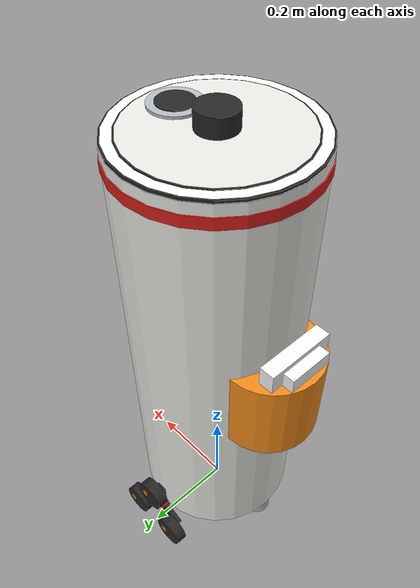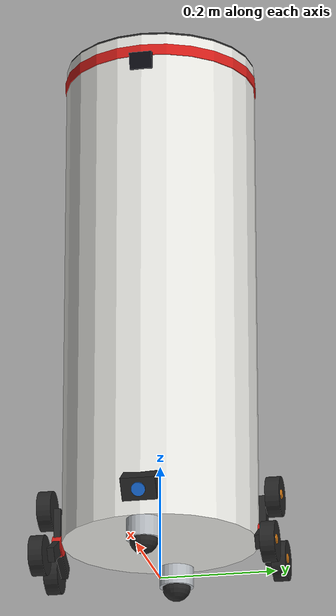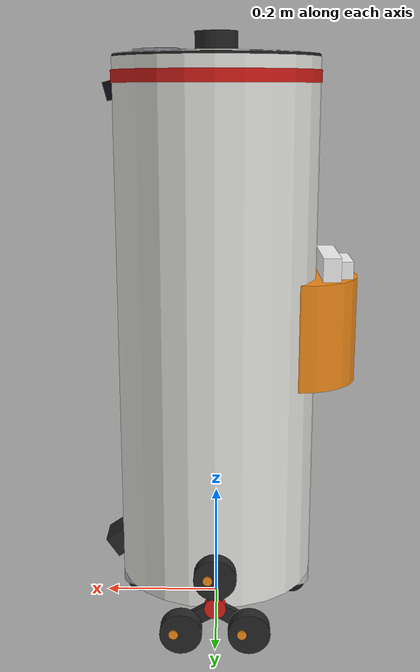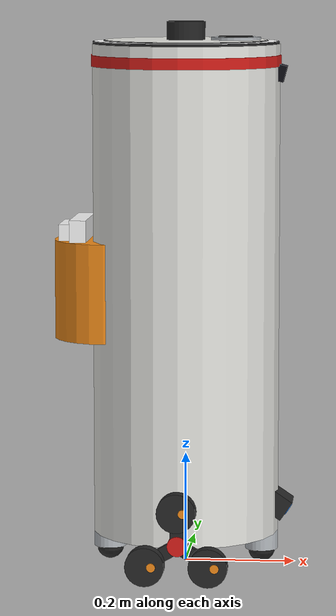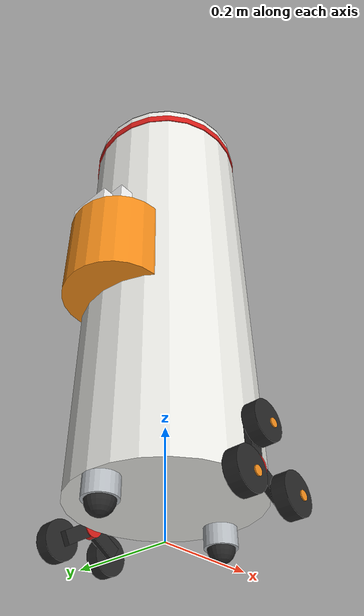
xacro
<?xml version="1.0"?>
<!-- Unit-1 home fire response robot: air-purifier-sized cylindrical body (0.95 m tall) on two tri-star wheel sets. -->
<robot name="home_robot" xmlns:xacro="http://www.ros.org/wiki/xacro">

  <!-- Body -->
  <xacro:property name="body_r" value="0.17"/>
  <xacro:property name="body_h" value="0.89"/>   <!-- top cover at 0.95 m -->
  <xacro:property name="body_z0" value="0.06"/>   <!-- ground clearance -->
  <xacro:property name="body_mass" value="3.0"/>    <!-- shell, sensors, towel, projector -->

  <!-- Heavy parts low in the body (inertial only, hidden inside) -->
  <xacro:property name="aerosol_mass" value="4.5"/> <!-- per unit, 217 x 99 mm, x2 -->
  <xacro:property name="battery_mass" value="2.5"/>

  <!-- Ball casters front/rear, bottom level with the tri-star wheel contacts -->
  <xacro:property name="caster_r" value="0.025"/>
  <xacro:property name="caster_x" value="0.14"/>

  <!-- Tri-star: frame fixed to body, 3 small wheels at 120 deg; bottom two touch the floor -->
  <xacro:property name="wheel_r" value="0.035"/>
  <xacro:property name="wheel_w" value="0.025"/>
  <xacro:property name="wheel_mass" value="0.15"/>
  <xacro:property name="arm" value="0.065"/>
  <xacro:property name="hub_z" value="${wheel_r + arm * 0.5}"/>
  <xacro:property name="hub_y" value="0.20"/>

  <xacro:property name="PI" value="3.14159265"/>

  <xacro:macro name="cyl_inertia" params="m r h">
    <inertia ixx="${m * (3 * r * r + h * h) / 12}" ixy="0" ixz="0"
             iyy="${m * (3 * r * r + h * h) / 12}" iyz="0" izz="${m * r * r / 2}"/>
  </xacro:macro>

  <material name="body_white"><color rgba="0.92 0.92 0.90 1"/></material>
  <material name="dark"><color rgba="0.15 0.15 0.15 1"/></material>
  <material name="towel_white"><color rgba="0.98 0.98 0.98 1"/></material>
  <material name="red"><color rgba="0.85 0.12 0.10 1"/></material>
  <material name="orange"><color rgba="0.95 0.55 0.10 1"/></material>
  <material name="blue"><color rgba="0.10 0.45 0.90 1"/></material>
  <material name="outlet_gray"><color rgba="0.72 0.74 0.76 1"/></material>
  <material name="glass"><color rgba="0.05 0.05 0.08 1"/></material>

  <link name="base_footprint"/>

  <link name="base_link">
    <visual>
      <geometry><cylinder radius="${body_r}" length="${body_h}"/></geometry>
      <material name="body_white"/>
    </visual>
    <!-- red band -->
    <visual>
      <origin xyz="0 0 ${body_h / 2 - 0.03}"/>
      <geometry><cylinder radius="${body_r + 0.002}" length="0.02"/></geometry>
      <material name="red"/>
    </visual>
    <collision>
      <geometry><cylinder radius="${body_r}" length="${body_h}"/></geometry>
    </collision>
    <inertial>
      <mass value="${body_mass}"/>
      <xacro:cyl_inertia m="${body_mass}" r="${body_r}" h="${body_h}"/>
    </inertial>
  </link>

  <joint name="base_joint" type="fixed">
    <parent link="base_footprint"/>
    <child link="base_link"/>
    <origin xyz="0 0 ${body_z0 + body_h / 2}"/>
  </joint>

  <!-- ===== Tri-star wheel sets ===== -->
  <xacro:macro name="tristar" params="side y">
    <link name="${side}_tristar_frame">
      <!-- three arms -->
      <xacro:macro name="arm_visual" params="ang">
        <visual>
          <origin xyz="${arm / 2 * cos(ang)} 0 ${arm / 2 * sin(ang)}" rpy="0 ${-ang} 0"/>
          <geometry><box size="${arm} 0.012 0.025"/></geometry>
          <material name="dark"/>
        </visual>
      </xacro:macro>
      <xacro:arm_visual ang="${PI / 2}"/>
      <xacro:arm_visual ang="${-PI / 6}"/>
      <xacro:arm_visual ang="${-5 * PI / 6}"/>
      <visual>
        <origin rpy="${PI / 2} 0 0"/>
        <geometry><cylinder radius="0.018" length="0.016"/></geometry>
        <material name="red"/>
      </visual>
      <inertial>
        <mass value="0.2"/>
        <inertia ixx="1e-4" ixy="0" ixz="0" iyy="1e-4" iyz="0" izz="1e-4"/>
      </inertial>
    </link>
    <joint name="${side}_tristar_joint" type="fixed">
      <parent link="base_link"/>
      <child link="${side}_tristar_frame"/>
      <origin xyz="0 ${y * (hub_y - 0.02)} ${hub_z - body_z0 - body_h / 2}"/>
    </joint>

    <xacro:macro name="tristar_wheel" params="pos ang">
      <link name="${side}_${pos}_wheel">
        <visual>
          <origin rpy="${PI / 2} 0 0"/>
          <geometry><cylinder radius="${wheel_r}" length="${wheel_w}"/></geometry>
          <material name="dark"/>
        </visual>
        <!-- hub cap so wheel rotation is visible -->
        <visual>
          <origin xyz="0.012 ${y * wheel_w / 2} 0" rpy="${PI / 2} 0 0"/>
          <geometry><cylinder radius="0.008" length="0.004"/></geometry>
          <material name="orange"/>
        </visual>
        <collision>
          <origin rpy="${PI / 2} 0 0"/>
          <geometry><cylinder radius="${wheel_r}" length="${wheel_w}"/></geometry>
        </collision>
        <inertial>
          <mass value="${wheel_mass}"/>
          <inertia ixx="${wheel_mass * (3 * wheel_r * wheel_r + wheel_w * wheel_w) / 12}" ixy="0" ixz="0"
                   iyy="${wheel_mass * wheel_r * wheel_r / 2}" iyz="0"
                   izz="${wheel_mass * (3 * wheel_r * wheel_r + wheel_w * wheel_w) / 12}"/>
        </inertial>
      </link>
      <joint name="${side}_${pos}_wheel_joint" type="continuous">
        <parent link="${side}_tristar_frame"/>
        <child link="${side}_${pos}_wheel"/>
        <origin xyz="${arm * cos(ang)} ${y * 0.02} ${arm * sin(ang)}"/>
        <axis xyz="0 1 0"/>
      </joint>
      <gazebo reference="${side}_${pos}_wheel">
        <mu1>1.0</mu1>
        <mu2>1.0</mu2>
      </gazebo>
    </xacro:macro>

    <xacro:tristar_wheel pos="top" ang="${PI / 2}"/>
    <xacro:tristar_wheel pos="front" ang="${-PI / 6}"/>
    <xacro:tristar_wheel pos="rear" ang="${-5 * PI / 6}"/>
  </xacro:macro>

  <xacro:tristar side="left" y="1"/>
  <xacro:tristar side="right" y="-1"/>

  <!-- ===== Heavy parts: 2 solid aerosol units upright side by side, battery under them ===== -->
  <xacro:macro name="aerosol_unit" params="idx y">
    <link name="aerosol_unit_${idx}">
      <inertial>
        <mass value="${aerosol_mass}"/>
        <xacro:cyl_inertia m="${aerosol_mass}" r="0.0495" h="0.217"/>
      </inertial>
    </link>
    <joint name="aerosol_unit_${idx}_joint" type="fixed">
      <parent link="base_link"/>
      <child link="aerosol_unit_${idx}"/>
      <origin xyz="0 ${y} ${0.17 - body_z0 - body_h / 2}"/>
    </joint>
  </xacro:macro>
  <xacro:aerosol_unit idx="1" y="0.055"/>
  <xacro:aerosol_unit idx="2" y="-0.055"/>

  <link name="battery_link">
    <inertial>
      <mass value="${battery_mass}"/>
      <inertia ixx="${battery_mass * (0.10 * 0.10 + 0.06 * 0.06) / 12}" ixy="0" ixz="0"
               iyy="${battery_mass * (0.15 * 0.15 + 0.06 * 0.06) / 12}" iyz="0"
               izz="${battery_mass * (0.15 * 0.15 + 0.10 * 0.10) / 12}"/>
    </inertial>
  </link>
  <joint name="battery_joint" type="fixed">
    <parent link="base_link"/>
    <child link="battery_link"/>
    <origin xyz="0 0 ${0.09 - body_z0 - body_h / 2}"/>
  </joint>

  <!-- ===== Ball casters (front/rear, frictionless) ===== -->
  <xacro:macro name="caster" params="pos x">
    <link name="${pos}_caster">
      <!-- housing fills the gap between the ball and the body bottom -->
      <visual>
        <origin xyz="0 0 ${(body_z0 + caster_r) / 2 - caster_r}"/>
        <geometry><cylinder radius="${caster_r + 0.005}" length="${body_z0 - caster_r}"/></geometry>
        <material name="outlet_gray"/>
      </visual>
      <visual>
        <geometry><sphere radius="${caster_r}"/></geometry>
        <material name="dark"/>
      </visual>
      <collision>
        <geometry><sphere radius="${caster_r}"/></geometry>
      </collision>
      <inertial>
        <mass value="0.05"/>
        <inertia ixx="1e-5" ixy="0" ixz="0" iyy="1e-5" iyz="0" izz="1e-5"/>
      </inertial>
    </link>
    <joint name="${pos}_caster_joint" type="fixed">
      <parent link="base_link"/>
      <child link="${pos}_caster"/>
      <origin xyz="${x} 0 ${caster_r - body_z0 - body_h / 2}"/>
    </joint>
    <gazebo reference="${pos}_caster">
      <mu1>0.0</mu1>
      <mu2>0.0</mu2>
    </gazebo>
  </xacro:macro>
  <xacro:caster pos="front" x="${caster_x}"/>
  <xacro:caster pos="rear" x="${-caster_x}"/>

  <link name="storage_link">
    <visual>
      <geometry><cylinder radius="0.10" length="0.18"/></geometry>
      <material name="orange"/>
    </visual>
  </link>
  <joint name="storage_joint" type="fixed">
    <parent link="base_link"/>
    <child link="storage_link"/>
    <origin xyz="-0.14 0 0.0"/>
  </joint>
  <!-- own link + gazebo material: the URDF->SDF converter only colors a link's first visual -->
  <link name="towel_link">
    <visual>
      <origin xyz="-0.05 0 0.085"/>
      <geometry><box size="0.03 0.14 0.09"/></geometry>
      <material name="towel_white"/>
    </visual>
    <visual>
      <origin xyz="-0.075 0 0.08"/>
      <geometry><box size="0.025 0.09 0.08"/></geometry>
      <material name="towel_white"/>
    </visual>
  </link>
  <joint name="towel_joint" type="fixed">
    <parent link="storage_link"/>
    <child link="towel_link"/>
  </joint>
  <gazebo reference="towel_link">
    <visual>
      <material>
        <ambient>0.98 0.98 0.98 1</ambient>
        <diffuse>0.98 0.98 0.98 1</diffuse>
      </material>
    </visual>
  </gazebo>

  <link name="aerosol_outlet_body">
    <visual>
      <geometry><cylinder radius="0.045" length="0.012"/></geometry>
      <material name="outlet_gray"/>
    </visual>
    <visual>
      <origin xyz="0 0 0.0065"/>
      <geometry><cylinder radius="0.032" length="0.002"/></geometry>
      <material name="dark"/>
    </visual>
  </link>
  <joint name="aerosol_outlet_body_joint" type="fixed">
    <parent link="base_link"/>
    <child link="aerosol_outlet_body"/>
    <origin xyz="0.09 0 ${body_h / 2 + 0.006}"/>
  </joint>
  <!-- emission frame, +z up -->
  <link name="aerosol_outlet_link"/>
  <joint name="aerosol_outlet_joint" type="fixed">
    <parent link="aerosol_outlet_body"/>
    <child link="aerosol_outlet_link"/>
    <origin xyz="0 0 0.008"/>
  </joint>

  <link name="status_ring_base">
    <visual>
      <origin xyz="0 0 0.002"/>
      <geometry><cylinder radius="0.169" length="0.004"/></geometry>
      <material name="dark"/>
    </visual>
    <visual>
      <origin xyz="0 0 0.0035"/>
      <geometry><cylinder radius="0.146" length="0.007"/></geometry>
      <material name="body_white"/>
    </visual>
    <visual>
      <origin xyz="0 0 0.003"/>
      <geometry><cylinder radius="0.149" length="0.006"/></geometry>
      <material name="dark"/>
    </visual>
  </link>
  <joint name="status_ring_base_joint" type="fixed">
    <parent link="base_link"/>
    <child link="status_ring_base"/>
    <origin xyz="0 0 ${body_h / 2}"/>
  </joint>
  <!-- the glowing ring itself; status_ring node finds its visual by name -->
  <link name="status_ring">
    <visual name="status_ring_visual">
      <origin xyz="0 0 0.0025"/>
      <geometry><cylinder radius="0.166" length="0.005"/></geometry>
      <material name="ring_white"><color rgba="1 1 1 1"/></material>
    </visual>
  </link>
  <joint name="status_ring_joint" type="fixed">
    <parent link="base_link"/>
    <child link="status_ring"/>
    <origin xyz="0 0 ${body_h / 2}"/>
  </joint>
  <gazebo reference="status_ring">
    <visual>
      <material>
        <ambient>1 1 1 1</ambient>
        <diffuse>1 1 1 1</diffuse>
        <emissive>1 1 1 1</emissive>
      </material>
    </visual>
  </gazebo>

  <!-- ===== Floor arrow beam projector (front low, points down-forward) ===== -->
  <link name="projector_body">
    <visual>
      <geometry><box size="0.04 0.06 0.04"/></geometry>
      <material name="dark"/>
    </visual>
    <visual>
      <origin xyz="0.021 0 0" rpy="0 ${PI / 2} 0"/>
      <geometry><cylinder radius="0.012" length="0.004"/></geometry>
      <material name="blue"/>
    </visual>
  </link>
  <joint name="projector_body_joint" type="fixed">
    <parent link="base_link"/>
    <child link="projector_body"/>
    <origin xyz="${body_r} 0 ${-body_h / 2 + 0.05}" rpy="0 0.6 0"/>
  </joint>
  <link name="projector_link"/>
  <joint name="projector_joint" type="fixed">
    <parent link="projector_body"/>
    <child link="projector_link"/>
    <origin xyz="0.023 0 0"/>
  </joint>

  <!-- ===== Sensors ===== -->
  <!-- 2D lidar (RPLIDAR A1 class) on top -->
  <link name="lidar_link">
    <visual>
      <geometry><cylinder radius="0.035" length="0.04"/></geometry>
      <material name="dark"/>
    </visual>
    <collision>
      <geometry><cylinder radius="0.035" length="0.04"/></geometry>
    </collision>
  </link>
  <joint name="lidar_joint" type="fixed">
    <parent link="base_link"/>
    <child link="lidar_link"/>
    <origin xyz="0 0 ${body_h / 2 + 0.02}"/>
  </joint>

  <!-- 32x24 thermal array (MLX90640 wide-angle BAB, 110x75 deg) high on front face, tilted 15 deg down
       to see over beds/sofas and the floor beside furniture -->
  <link name="thermal_link">
    <visual>
      <origin xyz="0.005 0 0"/>
      <geometry><box size="0.02 0.04 0.03"/></geometry>
      <material name="glass"/>
    </visual>
  </link>
  <joint name="thermal_joint" type="fixed">
    <parent link="base_link"/>
    <child link="thermal_link"/>
    <origin xyz="${body_r - 0.005} 0 ${body_h / 2 - 0.05}" rpy="0 0.26 0"/>
  </joint>
  <link name="thermal_optical_link"/>
  <joint name="thermal_optical_joint" type="fixed">
    <parent link="thermal_link"/>
    <child link="thermal_optical_link"/>
    <origin rpy="${-PI / 2} 0 ${-PI / 2}"/>
  </joint>

  <gazebo reference="lidar_link">
    <sensor name="lidar" type="gpu_lidar">
      <topic>scan</topic>
      <gz_frame_id>lidar_link</gz_frame_id>
      <update_rate>5</update_rate>
      <always_on>true</always_on>
      <lidar>
        <scan>
          <horizontal><samples>360</samples><resolution>1</resolution>
            <min_angle>-3.14159</min_angle><max_angle>3.14159</max_angle></horizontal>
          <vertical><samples>1</samples><resolution>1</resolution><min_angle>0</min_angle><max_angle>0</max_angle></vertical>
        </scan>
        <range><min>0.15</min><max>12.0</max><resolution>0.01</resolution></range>
        <noise><type>gaussian</type><mean>0</mean><stddev>0.01</stddev></noise>
      </lidar>
    </sensor>
  </gazebo>

  <gazebo reference="thermal_link">
    <sensor name="thermal" type="thermal">
      <topic>thermal/image_full</topic>
      <gz_frame_id>thermal_optical_link</gz_frame_id>
      <update_rate>8</update_rate>
      <always_on>true</always_on>
      <camera>
        <horizontal_fov>1.9199</horizontal_fov>
        <image><width>224</width><height>120</height><format>L16</format></image>
        <clip><near>0.05</near><far>20</far></clip>
      </camera>
      <plugin filename="gz-sim-thermal-sensor-system" name="gz::sim::systems::ThermalSensor">
        <min_temp>253.15</min_temp>
        <max_temp>1273.15</max_temp>
        <resolution>0.1</resolution>
      </plugin>
    </sensor>
  </gazebo>

  <!-- ===== Gazebo systems ===== -->
  <gazebo>
    <plugin filename="gz-sim-diff-drive-system" name="gz::sim::systems::DiffDrive">
      <left_joint>left_front_wheel_joint</left_joint>
      <left_joint>left_rear_wheel_joint</left_joint>
      <left_joint>left_top_wheel_joint</left_joint>
      <right_joint>right_front_wheel_joint</right_joint>
      <right_joint>right_rear_wheel_joint</right_joint>
      <right_joint>right_top_wheel_joint</right_joint>
      <!-- effective track for skid steering (measured: true/odom yaw = 0.925 at 0.40 m) -->
      <wheel_separation>0.43</wheel_separation>
      <wheel_radius>${wheel_r}</wheel_radius>
      <max_linear_acceleration>1.0</max_linear_acceleration>
      <max_angular_acceleration>3.0</max_angular_acceleration>
      <topic>cmd_vel</topic>
      <odom_topic>odom</odom_topic>
      <tf_topic>tf</tf_topic>
      <frame_id>odom</frame_id>
      <child_frame_id>base_footprint</child_frame_id>
      <odom_publish_frequency>30</odom_publish_frequency>
    </plugin>
    <plugin filename="gz-sim-joint-state-publisher-system" name="gz::sim::systems::JointStatePublisher">
      <topic>joint_states</topic>
      <update_rate>30</update_rate>
    </plugin>
  </gazebo>

</robot>
